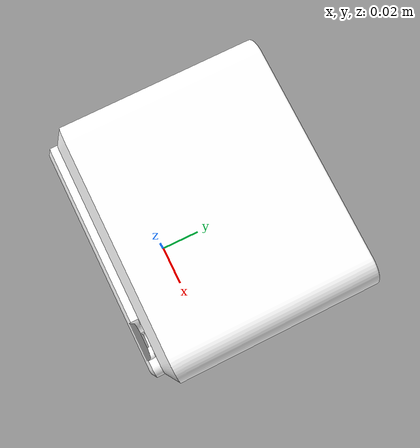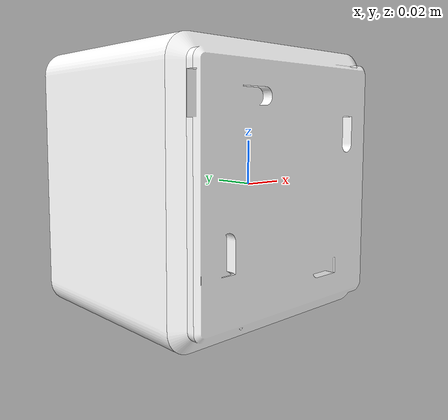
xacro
<?xml version="1.0"?>
<robot xmlns:xacro="http://www.ros.org/wiki/xacro" name="container">

  <xacro:property name="mesh_scale" value="0.003 0.003 0.002"/>
  <xacro:property name="mesh_origin_xyz" value="0 -0.027 0"/>
  <xacro:property name="mesh_origin_rpy" value="-1.5708 0 0"/>

  <link name="container_link">
    <visual>
      <origin xyz="${mesh_origin_xyz}" rpy="${mesh_origin_rpy}"/>
      <geometry>
        <mesh filename="package://vision_processing/urdf/Other_container.stl" scale="${mesh_scale}"/>
      </geometry>
      <material name="container_material">
        <color rgba="1.0 1.0 1.0 1.0"/>
      </material>
    </visual>

    <collision>
      <origin xyz="${mesh_origin_xyz}" rpy="${mesh_origin_rpy}"/>
      <geometry>
        <mesh filename="package://vision_processing/urdf/Other_container_collision.stl" scale="${mesh_scale}"/>
      </geometry>
    </collision>

    <inertial>
      <mass value="0.3"/>
      <inertia ixx="1e-3" ixy="0" ixz="0" iyy="1e-3" iyz="0" izz="1e-3"/>
    </inertial>
  </link>

  <gazebo reference="container_link">
    <material>Gazebo/White</material>
  </gazebo>

  <gazebo>
    <static>true</static>
    <plugin name="p3d_base_controller" filename="libgazebo_ros_p3d.so">
      <alwaysOn>true</alwaysOn>
      <updateRate>50.0</updateRate>
      <bodyName>container_link</bodyName>
      <topicName>container_pose</topicName>
      <gaussianNoise>0.0</gaussianNoise>
      <frameName>world</frameName>
      <xyzOffsets>0 0 0</xyzOffsets>
      <rpyOffsets>0 0 0</rpyOffsets>
    </plugin>
  </gazebo>

</robot>
